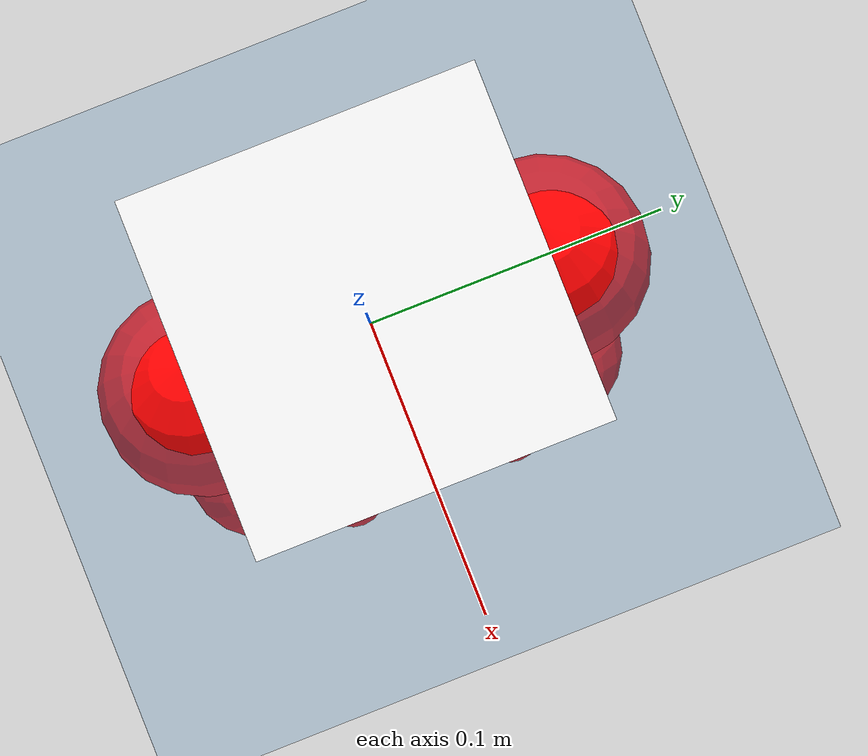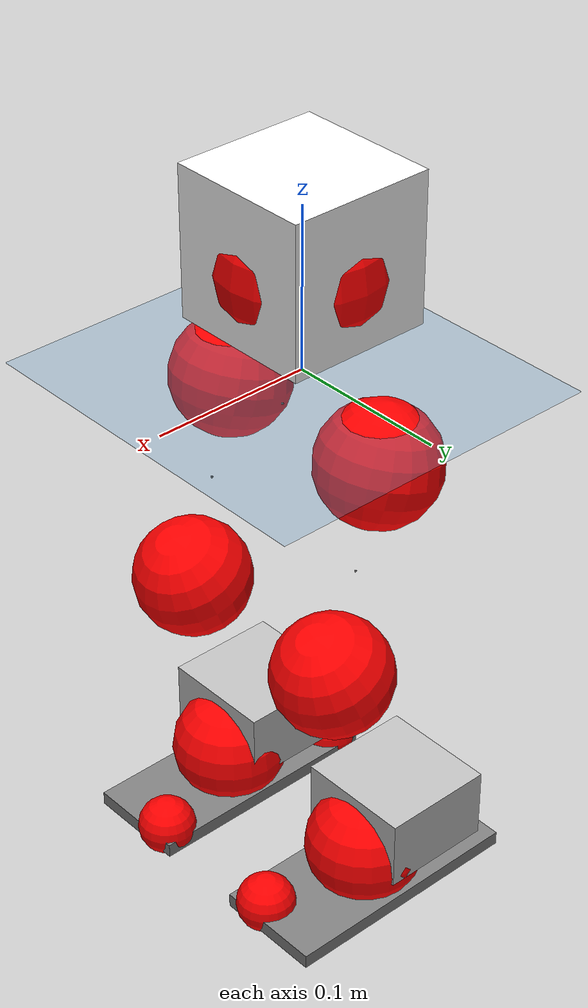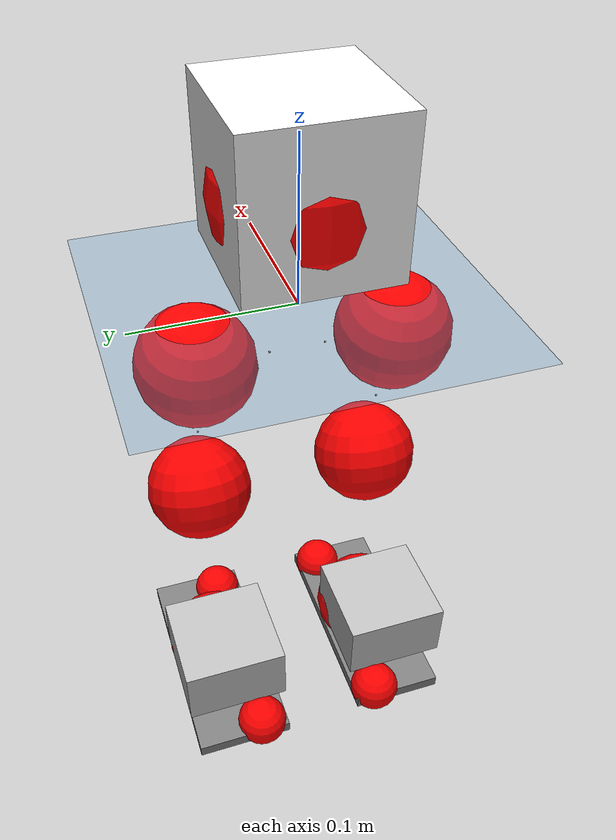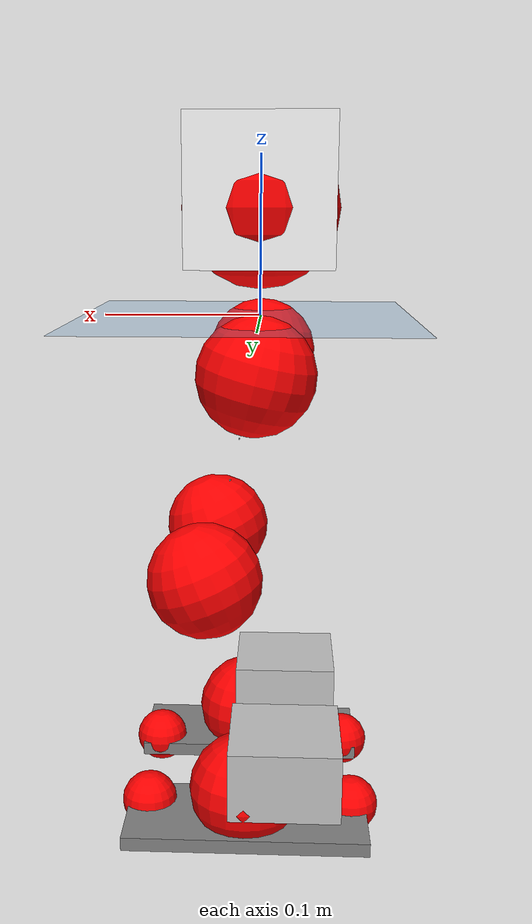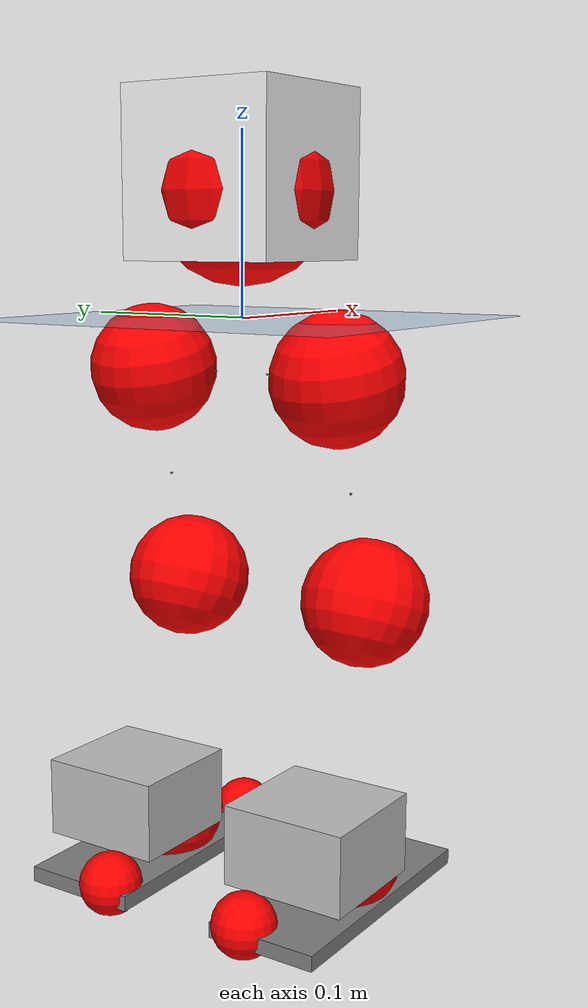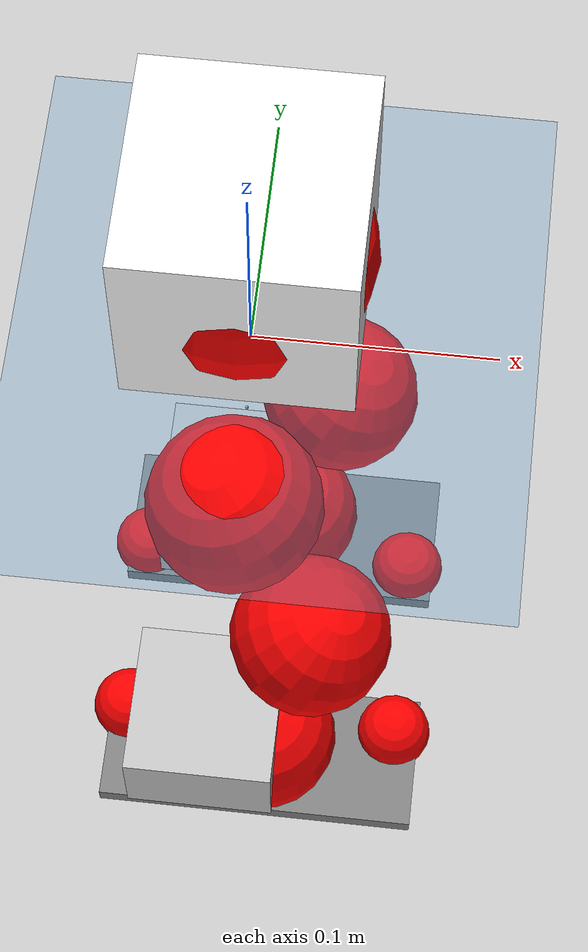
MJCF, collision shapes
<mujoco model="pi_12dof_release_v1">
  <compiler angle="radian" assetdir="assets" balanceinertia="true" inertiafromgeom="false"/>

  <option timestep="0.005" density="1.2" viscosity="2e-05"/>

  <size nkey="1"/>

  <visual>
    <quality shadowsize="8192"/>
    <map shadowclip="0.5"/>
  </visual>

  <default>
    <default class="/">
      <joint armature="0.01" damping="0.01" frictionloss="0.01"/>
      <geom contype="0" conaffinity="0" group="1" solref="-1000 -80"/>
      <site size="0.01 0.005 0.005" group="5"/>
      <general forcelimited="true" biastype="affine" gainprm="20" biasprm="0 -20 -0.5"/>
      <default class="foot">
        <geom size="0.0845 0.036 0.005" type="box" condim="6" group="4" priority="1" friction="0.9 0.2 0.2" solimp="0.015 1 0.005"/>
      </default>
      <default class="reward_collision_sphere">
        <geom group="5" rgba="1 0 0 1"/>
      </default>
    </default>
  </default>

  <asset>
    <texture type="skybox" colorspace="auto" name="//unnamed_texture_0" builtin="gradient" rgb1="0.95 0.95 0.95" rgb2="0.95 0.95 0.95" width="100" height="600"/>
    <texture type="2d" colorspace="auto" name="texplane" builtin="checker" rgb1="0.345 0.575 0.748" rgb2="0.345 0.575 0.748" markrgb="1 1 1" width="512" height="512"/>
    <material name="MatPlane" class="/" texture="texplane" texuniform="true" texrepeat="2 2" specular="0.9"/>
    <mesh name="baselink_1" class="/" file="baselink_1.STL"/>
    <mesh name="r_hip_pitch_link" class="/" file="r_hip_pitch_link.STL"/>
    <mesh name="r_hip_roll_link" class="/" file="r_hip_roll_link.STL"/>
    <mesh name="r_thigh_link" class="/" file="r_thigh_link.STL"/>
    <mesh name="r_calf_link" class="/" file="r_calf_link.STL"/>
    <mesh name="r_ankle_pitch_link" class="/" file="r_ankle_pitch_link.STL"/>
    <mesh name="r_ankle_roll_link" class="/" file="r_ankle_roll_link.STL"/>
    <mesh name="l_hip_pitch_link" class="/" file="l_hip_pitch_link.STL"/>
    <mesh name="l_hip_roll_link" class="/" file="l_hip_roll_link.STL"/>
    <mesh name="l_thigh_link" class="/" file="l_thigh_link.STL"/>
    <mesh name="l_calf_link" class="/" file="l_calf_link.STL"/>
    <mesh name="l_ankle_pitch_link" class="/" file="l_ankle_pitch_link.STL"/>
    <mesh name="l_ankle_roll_link" class="/" file="l_ankle_roll_link.STL"/>
  </asset>

  <worldbody>
    <geom name="floor" class="/" size="100 100 0.125" type="plane" group="0" material="MatPlane"/>
    <light name="toplight_shadow" class="/" pos="0 0 5" dir="0.0990148 0.0990148 -0.990148" type="directional" ambient="0.04 0.04 0.04" diffuse="0.55 0.55 0.55" specular="0.12 0.12 0.12"/>
    <light name="toplight_fill" class="/" pos="0 0 5" dir="0.0990148 0.0990148 -0.990148" type="directional" castshadow="false" ambient="0.04 0.04 0.04" diffuse="0.3 0.3 0.3" specular="0.08 0.08 0.08"/>
    <body name="trunk" pos="7.33939e-05 4.87483e-05 0.000836082" quat="1 -1.62038e-06 1.77047e-07 1.63781e-06">
      <inertial pos="0.00195139 -0.000665457 0.037639" quat="0.695288 0.00945843 0.00938383 0.718608" mass="1.66517" diaginertia="0.00971022 0.00286325 0.00318814"/>
      <joint name="//unnamed_joint_0" type="free"/>
      <geom name="//unnamed_geom_1" class="/" type="mesh" density="0" rgba="1 1 1 1" mesh="baselink_1"/>
      <geom name="//unnamed_geom_2" class="/" size="0.0456381 0.0456381 0.0456381" pos="0 0 0.0757081" type="box" rgba="1 1 1 1"/>
      <geom name="//unnamed_geom_3" class="reward_collision_sphere" size="0.0502019" pos="0 0 0.0662446"/>
      <site name="imu" class="/" pos="0.000333142 0.00400794 -0.00045651" size="0.00912762"/>
      <camera name="track" class="/" pos="0 -1.58885 0" quat="0.707107 0.707107 0 0" mode="trackcom"/>
      <camera name="ego_camera" class="/" pos="0.0748133 0 0.170343" quat="-0.5 -0.5 0.5 0.5"/>
      <body name="r_hip_pitch_link" pos="-0.000413197 -0.0168894 -0.0307192" quat="0.992177 6.70549e-05 -0.124842 -2.46485e-05">
        <inertial pos="0.00144019 -0.0446917 0.000667292" quat="-0.0188986 0.705403 -0.0279113 0.708005" mass="0.278658" diaginertia="0.000106716 3.11902e-05 6.21276e-05"/>
        <joint name="r_hip_pitch_joint" class="/" pos="0 0 0" axis="-0.00421858 -0.999976 0.00543214" range="-1.74821 1.26786" armature="0.0095134" damping="0.0158096" frictionloss="0.00946458"/>
        <geom name="//unnamed_geom_4" class="/" type="mesh" density="0" rgba="0.75294 0.75294 0.75294 1" mesh="r_hip_pitch_link"/>
        <geom name="//unnamed_geom_5" class="/" size="0.000456381 0.000456381 0.000456381" type="box" rgba="0.75294 0.75294 0.75294 1"/>
        <body name="r_hip_roll_link" pos="-8.0018e-06 -0.0439241 -0.000557355" quat="1 8.36716e-06 -4.68265e-06 -1.43963e-05">
          <inertial pos="-0.00124596 0.000213288 -0.0573237" quat="0.705855 -0.0786279 -0.0831422 0.699052" mass="0.297666" diaginertia="0.000331417 8.74379e-05 9.69512e-05"/>
          <joint name="r_hip_roll_joint" class="/" pos="0 0 0" axis="-0.999996 0.00294619 -0.00017212" stiffness="0.000351285" range="-0.121572 0.501543" armature="0.00898943" damping="0.00248612" frictionloss="0.00874481"/>
          <geom name="//unnamed_geom_6" class="/" type="mesh" density="0" rgba="0.75294 0.75294 0.75294 1" mesh="r_hip_roll_link"/>
          <geom name="//unnamed_geom_7" class="/" size="0.000456381 0.000456381 0.000456381" type="box" rgba="0.75294 0.75294 0.75294 1"/>
          <geom name="//unnamed_geom_8" class="reward_collision_sphere" size="0.0365105"/>
          <body name="r_thigh_link" pos="-0.000118247 -6.18068e-07 -0.0655702" quat="1 -5.85842e-06 -5.55244e-06 -3.28111e-09">
            <inertial pos="0.000242946 0.000680778 -0.0450852" quat="0.737144 0.675736 0.00019803 0.00021382" mass="0.086565" diaginertia="0.000123488 3.003e-05 4.4211e-05"/>
            <joint name="r_thigh_joint" class="/" pos="0 0 0" axis="0.000758845 -0.00020082 -1" range="-0.30032 0.608692" armature="0.00891456" damping="0.00262664" frictionloss="0.0092226"/>
            <geom name="//unnamed_geom_9" class="/" type="mesh" density="0" rgba="0.75294 0.75294 0.75294 1" mesh="r_thigh_link"/>
            <geom name="//unnamed_geom_10" class="/" size="0.000456381 0.000456381 0.000456381" type="box" rgba="0.75294 0.75294 0.75294 1"/>
            <body name="r_calf_link" pos="-0.000738464 -0.00111812 -0.0660027" quat="0.947638 6.71424e-05 0.319345 -0.000200257">
              <inertial pos="-0.00011239 -0.000185903 -0.0666118" quat="0.999985 -0.00291268 0.000115783 0.00467473" mass="0.621656" diaginertia="0.00349491 0.00111755 0.00013256"/>
              <joint name="r_calf_joint" class="/" pos="0 0 0" axis="-1.4208e-05 -1 -5.21786e-06" range="-1.64328 0.648903" armature="0.00919002" damping="0.00794215" frictionloss="0.00896318"/>
              <geom name="//unnamed_geom_11" class="/" type="mesh" density="0" rgba="0.75294 0.75294 0.75294 1" mesh="r_calf_link"/>
              <geom name="//unnamed_geom_12" class="/" size="0.000456381 0.000456381 0.000456381" type="box" rgba="0.75294 0.75294 0.75294 1"/>
              <geom name="//unnamed_geom_13" class="reward_collision_sphere" size="0.0365105"/>
              <body name="r_ankle_pitch_link" pos="0.00126216 -0.000311329 -0.132809" quat="0.980066 9.01254e-06 -0.198672 3.6599e-05">
                <inertial pos="0.00476858 0.00256519 -0.000293884" quat="0.00190529 0.707106 -0.00171976 0.707103" mass="0.136103" diaginertia="0.000306232 7.11645e-05 9.22798e-05"/>
                <joint name="r_ankle_pitch_joint" class="/" pos="0 0 0" axis="0.00298275 -0.999995 -0.000794788" range="-1.28068 0.491352" armature="0.00918661" damping="0.00873004" frictionloss="0.00895663"/>
                <geom name="//unnamed_geom_14" class="/" type="mesh" density="0" rgba="0.75294 0.75294 0.75294 1" mesh="r_ankle_pitch_link"/>
                <geom name="//unnamed_geom_15" class="/" size="0.0355977 0.0365105 0.0228191" type="box" rgba="0.75294 0.75294 0.75294 1"/>
                <body name="r_ankle_roll_link" pos="0.0769263 0.00268347 -0.000779985" quat="1 9.35068e-05 -5.01157e-05 2.44318e-06">
                  <inertial pos="-0.023613 -0.000365607 -0.0133037" quat="0.558908 0.430633 0.43378 0.560368" mass="0.389143" diaginertia="0.00110353 0.000325409 0.00021434"/>
                  <joint name="r_ankle_roll_joint" class="/" pos="0 0 0" axis="-1 -0.000822867 -0.000436645" stiffness="0.000140068" range="-0.152512 0.145638" armature="0.00911323" damping="0.00574117" frictionloss="0.00944298"/>
                  <geom name="//unnamed_geom_16" class="/" type="mesh" density="0" rgba="0.75294 0.75294 0.75294 1" mesh="r_ankle_roll_link"/>
                  <geom name="//unnamed_geom_17" class="/" type="mesh" rgba="0.75294 0.75294 0.75294 1" mesh="r_ankle_roll_link"/>
                  <geom name="right_foot" class="foot" size="0.0780374 0.0326436 0.0044756" pos="-0.0508731 0 -0.0416394"/>
                  <geom name="//unnamed_geom_19" class="reward_collision_sphere" size="0.0365105" pos="-0.0498756 0 -0.018927"/>
                  <geom name="//unnamed_geom_20" class="reward_collision_sphere" size="0.0182552" pos="0.0149627 0.0158885 -0.037854"/>
                  <geom name="//unnamed_geom_21" class="reward_collision_sphere" size="0.0182552" pos="-0.119701 0.0158885 -0.037854"/>
                  <site name="right_foot" class="foot" pos="-0.0508731 0 -0.0416394" size="0.00912762"/>
                </body>
              </body>
            </body>
          </body>
        </body>
      </body>
      <body name="l_hip_pitch_link" pos="0.00027375 0.0178074 -0.0309522" quat="0.992182 -0.000112843 -0.124802 -4.88733e-05">
        <inertial pos="0.00146111 0.0429844 0.000428728" quat="-0.039172 0.702166 0.0312337 0.710248" mass="0.293045" diaginertia="0.000126945 3.2894e-05 7.6896e-05"/>
        <joint name="l_hip_pitch_joint" class="/" pos="0 0 0" axis="0.000402802 1 0.000495923" stiffness="5.2442e-05" range="-1.25828 1.75275" armature="0.00874455" damping="0.00831684" frictionloss="0.00932885"/>
        <geom name="//unnamed_geom_22" class="/" type="mesh" density="0" rgba="0.75294 0.75294 0.75294 1" mesh="l_hip_pitch_link"/>
        <geom name="//unnamed_geom_23" class="/" size="0.000456381 0.000456381 0.000456381" type="box" rgba="0.75294 0.75294 0.75294 1"/>
        <body name="l_hip_roll_link" pos="0.000640158 0.0445872 -9.55371e-05" quat="1 -0.000227301 -2.22616e-05 8.13959e-05">
          <inertial pos="-0.00171834 0.000757816 -0.0581597" quat="0.699172 -0.0746764 -0.0786123 0.706684" mass="0.298047" diaginertia="0.000328112 8.88996e-05 9.69592e-05"/>
          <joint name="l_hip_roll_joint" class="/" pos="0 0 0" axis="-0.999997 -0.00154133 0.00172996" range="-0.484399 0.111264" armature="0.00933306" damping="0.00477098" frictionloss="0.00903918"/>
          <geom name="//unnamed_geom_24" class="/" type="mesh" density="0" rgba="0.75294 0.75294 0.75294 1" mesh="l_hip_roll_link"/>
          <geom name="//unnamed_geom_25" class="/" size="0.000456381 0.000456381 0.000456381" type="box" rgba="0.75294 0.75294 0.75294 1"/>
          <geom name="//unnamed_geom_26" class="reward_collision_sphere" size="0.0365105"/>
          <body name="l_thigh_link" pos="-0.000775461 -0.000185606 -0.0656711" quat="1 0.000107965 0.000133052 0.000110377">
            <inertial pos="-7.00992e-05 -0.00155985 -0.0444297" quat="0.675529 0.737333 6.33992e-05 -8.71724e-05" mass="0.0869859" diaginertia="0.000124627 3.0341e-05 4.50788e-05"/>
            <joint name="l_thigh_joint" class="/" pos="0 0 0" axis="-0.0018035 0.00078147 -0.999998" range="-0.592207 0.303547" armature="0.00918215" damping="0" frictionloss="0.00950722"/>
            <geom name="//unnamed_geom_27" class="/" type="mesh" density="0" rgba="0.75294 0.75294 0.75294 1" mesh="l_thigh_link"/>
            <geom name="//unnamed_geom_28" class="/" size="0.000456381 0.000456381 0.000456381" type="box" rgba="0.75294 0.75294 0.75294 1"/>
            <body name="l_calf_link" pos="-0.00055977 -0.000482781 -0.0668941" quat="0.947659 -1.49249e-05 0.319284 -0.000132427">
              <inertial pos="0.000553022 0.00177443 -0.065662" quat="0.999993 0.00233854 0.00221744 0.00170421" mass="0.622493" diaginertia="0.00347713 0.0011288 0.000133922"/>
              <joint name="l_calf_joint" class="/" pos="0 0 0" axis="-0.000195756 0.999999 0.00116771" range="-0.640119 1.66486" armature="0.00905846" damping="0.00939491" frictionloss="0.00953864"/>
              <geom name="//unnamed_geom_29" class="/" type="mesh" density="0" rgba="0.75294 0.75294 0.75294 1" mesh="l_calf_link"/>
              <geom name="//unnamed_geom_30" class="/" size="0.000456381 0.000456381 0.000456381" type="box" rgba="0.75294 0.75294 0.75294 1"/>
              <geom name="//unnamed_geom_31" class="reward_collision_sphere" size="0.0365105"/>
              <body name="l_ankle_pitch_link" pos="0.000713997 0.00156035 -0.133547" quat="0.980071 -0.000100911 -0.19865 -5.27896e-05">
                <inertial pos="0.00481949 0.000157033 -0.000850339" quat="-0.00378602 0.705964 -1.66254e-05 0.708237" mass="0.132445" diaginertia="0.000301608 6.92932e-05 9.01943e-05"/>
                <joint name="l_ankle_pitch_joint" class="/" pos="0 0 0" axis="0.00109599 0.999999 -0.000610172" range="-0.506423 1.30665" armature="0.00921332" damping="0.0035411" frictionloss="0.00890173"/>
                <geom name="//unnamed_geom_32" class="/" type="mesh" density="0" rgba="0.75294 0.75294 0.75294 1" mesh="l_ankle_pitch_link"/>
                <geom name="//unnamed_geom_33" class="/" size="0.0355977 0.0365105 0.0228191" type="box" rgba="0.75294 0.75294 0.75294 1"/>
                <body name="l_ankle_roll_link" pos="0.0753962 0.000702322 4.42079e-05" quat="1 -0.000333545 2.14434e-05 5.86734e-05">
                  <inertial pos="-0.0243345 -0.000118683 -0.0136603" quat="0.560689 0.431982 0.433044 0.558115" mass="0.397859" diaginertia="0.00113325 0.000327968 0.000219267"/>
                  <joint name="l_ankle_roll_joint" class="/" pos="0 0 0" axis="-0.999988 -0.00433201 0.00237385" stiffness="0.000562002" range="-0.149907 0.133146" armature="0.00920833" damping="0.00824177" frictionloss="0.00875948"/>
                  <geom name="//unnamed_geom_34" class="/" type="mesh" density="0" rgba="0.75294 0.75294 0.75294 1" mesh="l_ankle_roll_link"/>
                  <geom name="//unnamed_geom_35" class="/" type="mesh" rgba="0.75294 0.75294 0.75294 1" mesh="l_ankle_roll_link"/>
                  <geom name="left_foot" class="foot" size="0.0789638 0.0342534 0.00451021" pos="-0.0508731 0 -0.0416394"/>
                  <geom name="//unnamed_geom_37" class="reward_collision_sphere" size="0.0365105" pos="-0.0498756 0 -0.018927"/>
                  <geom name="//unnamed_geom_38" class="reward_collision_sphere" size="0.0182552" pos="0.0149627 -0.0158885 -0.037854"/>
                  <geom name="//unnamed_geom_39" class="reward_collision_sphere" size="0.0182552" pos="-0.119701 -0.0158885 -0.037854"/>
                  <site name="left_foot" class="foot" pos="-0.0508731 0 -0.0416394" size="0.00912762"/>
                </body>
              </body>
            </body>
          </body>
        </body>
      </body>
    </body>
  </worldbody>

  <contact>
    <pair class="/" geom1="floor" geom2="right_foot" name="//unnamed_contact_1"/>
    <pair class="/" geom1="floor" geom2="left_foot" name="//unnamed_contact_0"/>
  </contact>

  <actuator>
    <general name="r_hip_pitch_joint" class="/" joint="r_hip_pitch_joint" forcerange="-19.7932 19.7932" gainprm="18.42" biasprm="0 -18.42 -0.457438"/>
    <general name="r_hip_roll_joint" class="/" joint="r_hip_roll_joint" forcerange="-19.251 19.251" gainprm="18.42" biasprm="0 -18.42 -0.457438"/>
    <general name="r_thigh_joint" class="/" joint="r_thigh_joint" forcerange="-19.8329 19.8329" gainprm="18.42" biasprm="0 -18.42 -0.457438"/>
    <general name="r_calf_joint" class="/" joint="r_calf_joint" forcerange="-19.2452 19.2452" gainprm="18.42" biasprm="0 -18.42 -0.457438"/>
    <general name="r_ankle_pitch_joint" class="/" joint="r_ankle_pitch_joint" forcerange="-18.4925 18.4925" gainprm="18.42" biasprm="0 -18.42 -0.457438"/>
    <general name="r_ankle_roll_joint" class="/" joint="r_ankle_roll_joint" forcerange="-19.1203 19.1203" gainprm="18.42" biasprm="0 -18.42 -0.457438"/>
    <general name="l_hip_pitch_joint" class="/" joint="l_hip_pitch_joint" forcerange="-19.7581 19.7581" gainprm="18.42" biasprm="0 -18.42 -0.457438"/>
    <general name="l_hip_roll_joint" class="/" joint="l_hip_roll_joint" forcerange="-18.6417 18.6417" gainprm="18.42" biasprm="0 -18.42 -0.457438"/>
    <general name="l_thigh_joint" class="/" joint="l_thigh_joint" forcerange="-19.4846 19.4846" gainprm="18.42" biasprm="0 -18.42 -0.457438"/>
    <general name="l_calf_joint" class="/" joint="l_calf_joint" forcerange="-18.9367 18.9367" gainprm="18.42" biasprm="0 -18.42 -0.457438"/>
    <general name="l_ankle_pitch_joint" class="/" joint="l_ankle_pitch_joint" forcerange="-19.2378 19.2378" gainprm="18.42" biasprm="0 -18.42 -0.457438"/>
    <general name="l_ankle_roll_joint" class="/" joint="l_ankle_roll_joint" forcerange="-19.5602 19.5602" gainprm="18.42" biasprm="0 -18.42 -0.457438"/>
  </actuator>

  <sensor>
    <gyro site="imu" name="imu_angular_velocity"/>
    <velocimeter site="imu" name="imu_linear_velocity"/>
    <framelinvel objtype="site" objname="left_foot" name="left_foot_global_linear_velocity"/>
    <framelinvel objtype="site" objname="right_foot" name="right_foot_global_linear_velocity"/>
  </sensor>

  <keyframe>
    <key name="home" qpos="0 0 0.291 1 0 0 0 0.4 0 0 -0.8 0.4 0 -0.4 0 0 0.8 -0.4 0"/>
  </keyframe>
</mujoco>
